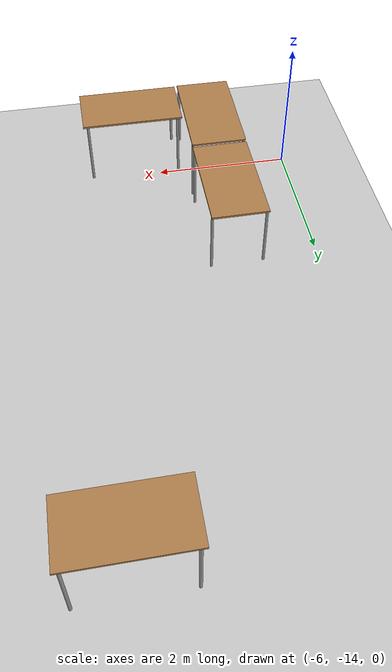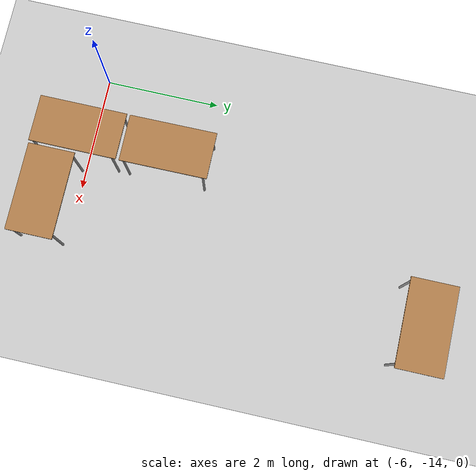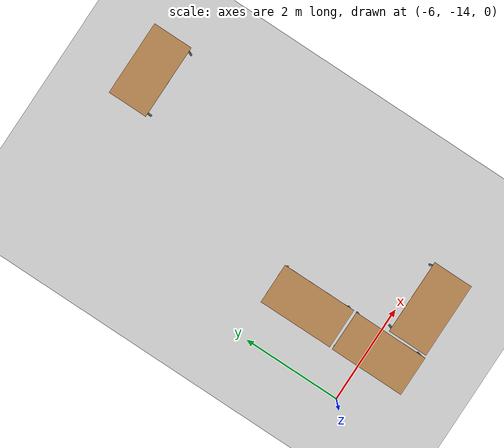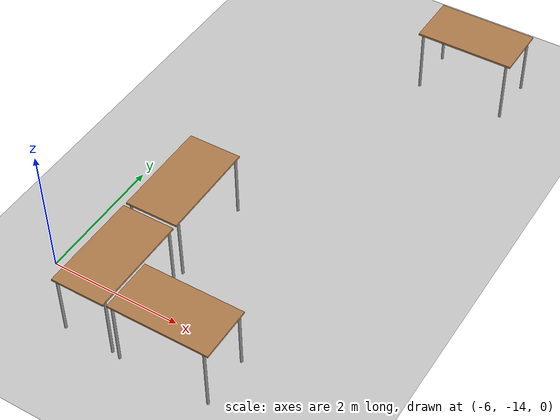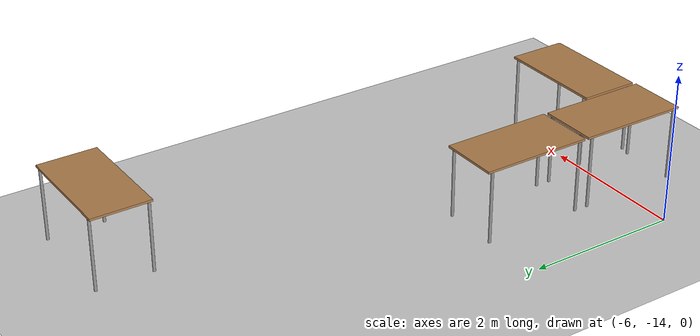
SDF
<sdf version="1.6">
 <world name="default">
  <model name="ground_plane">
   <static>1</static>
   <link name="link">
    <collision name="collision">
     <geometry><plane><normal>0 0 1</normal><size>100 100</size></plane></geometry>
     <surface>
      <contact><collide_bitmask>65535</collide_bitmask></contact>
      <friction><ode><mu>100</mu><mu2>50</mu2></ode></friction>
     </surface>
    </collision>
    <visual name="visual">
     <cast_shadows>0</cast_shadows>
     <geometry><plane><normal>0 0 1</normal><size>100 100</size></plane></geometry>
     <material>
      <script><uri>file://media/materials/scripts/gazebo.material</uri><name>Gazebo/Grey</name></script>
     </material>
    </visual>
   </link>
  </model>
  <model name="table_7">
   <static>1</static>
   <link name="link">
    <collision name="surface">
     <pose>0 0 1 0 -0 0</pose>
     <geometry><box><size>1.5 0.8 0.03</size></box></geometry>
     <surface><friction><ode><mu>0.6</mu><mu2>0.6</mu2></ode></friction></surface>
    </collision>
    <visual name="visual1">
     <pose>0 0 1 0 -0 0</pose>
     <geometry><box><size>1.5 0.8 0.03</size></box></geometry>
     <material>
      <script><uri>file://media/materials/scripts/gazebo.material</uri><name>Gazebo/Wood</name></script>
     </material>
    </visual>
    <collision name="front_left_leg">
     <pose>0.68 0.38 0.5 0 -0 0</pose>
     <geometry><cylinder><radius>0.02</radius><length>1</length></cylinder></geometry>
    </collision>
    <visual name="front_left_leg">
     <pose>0.68 0.38 0.5 0 -0 0</pose>
     <geometry><cylinder><radius>0.02</radius><length>1</length></cylinder></geometry>
     <material>
      <script><uri>file://media/materials/scripts/gazebo.material</uri><name>Gazebo/Grey</name></script>
     </material>
    </visual>
    <collision name="front_right_leg">
     <pose>0.68 -0.38 0.5 0 -0 0</pose>
     <geometry><cylinder><radius>0.02</radius><length>1</length></cylinder></geometry>
    </collision>
    <visual name="front_right_leg">
     <pose>0.68 -0.38 0.5 0 -0 0</pose>
     <geometry><cylinder><radius>0.02</radius><length>1</length></cylinder></geometry>
     <material>
      <script><uri>file://media/materials/scripts/gazebo.material</uri><name>Gazebo/Grey</name></script>
     </material>
    </visual>
    <collision name="back_right_leg">
     <pose>-0.68 -0.38 0.5 0 -0 0</pose>
     <geometry><cylinder><radius>0.02</radius><length>1</length></cylinder></geometry>
    </collision>
    <visual name="back_right_leg">
     <pose>-0.68 -0.38 0.5 0 -0 0</pose>
     <geometry><cylinder><radius>0.02</radius><length>1</length></cylinder></geometry>
     <material>
      <script><uri>file://media/materials/scripts/gazebo.material</uri><name>Gazebo/Grey</name></script>
     </material>
    </visual>
    <collision name="back_left_leg">
     <pose>-0.68 0.38 0.5 0 -0 0</pose>
     <geometry><cylinder><radius>0.02</radius><length>1</length></cylinder></geometry>
    </collision>
    <visual name="back_left_leg">
     <pose>-0.68 0.38 0.5 0 -0 0</pose>
     <geometry><cylinder><radius>0.02</radius><length>1</length></cylinder></geometry>
     <material>
      <script><uri>file://media/materials/scripts/gazebo.material</uri><name>Gazebo/Grey</name></script>
     </material>
    </visual>
   </link>
   <pose>-2.81475 -7.80658 0 0 -0 0</pose>
  </model>
  <model name="table_8">
   <static>1</static>
   <link name="link">
    <collision name="surface">
     <pose>0 0 1 0 -0 0</pose>
     <geometry><box><size>1.5 0.8 0.03</size></box></geometry>
     <surface><friction><ode><mu>0.6</mu><mu2>0.6</mu2></ode></friction></surface>
    </collision>
    <visual name="visual1">
     <pose>0 0 1 0 -0 0</pose>
     <geometry><box><size>1.5 0.8 0.03</size></box></geometry>
     <material>
      <script><uri>file://media/materials/scripts/gazebo.material</uri><name>Gazebo/Wood</name></script>
     </material>
    </visual>
    <collision name="front_left_leg">
     <pose>0.68 0.38 0.5 0 -0 0</pose>
     <geometry><cylinder><radius>0.02</radius><length>1</length></cylinder></geometry>
    </collision>
    <visual name="front_left_leg">
     <pose>0.68 0.38 0.5 0 -0 0</pose>
     <geometry><cylinder><radius>0.02</radius><length>1</length></cylinder></geometry>
     <material>
      <script><uri>file://media/materials/scripts/gazebo.material</uri><name>Gazebo/Grey</name></script>
     </material>
    </visual>
    <collision name="front_right_leg">
     <pose>0.68 -0.38 0.5 0 -0 0</pose>
     <geometry><cylinder><radius>0.02</radius><length>1</length></cylinder></geometry>
    </collision>
    <visual name="front_right_leg">
     <pose>0.68 -0.38 0.5 0 -0 0</pose>
     <geometry><cylinder><radius>0.02</radius><length>1</length></cylinder></geometry>
     <material>
      <script><uri>file://media/materials/scripts/gazebo.material</uri><name>Gazebo/Grey</name></script>
     </material>
    </visual>
    <collision name="back_right_leg">
     <pose>-0.68 -0.38 0.5 0 -0 0</pose>
     <geometry><cylinder><radius>0.02</radius><length>1</length></cylinder></geometry>
    </collision>
    <visual name="back_right_leg">
     <pose>-0.68 -0.38 0.5 0 -0 0</pose>
     <geometry><cylinder><radius>0.02</radius><length>1</length></cylinder></geometry>
     <material>
      <script><uri>file://media/materials/scripts/gazebo.material</uri><name>Gazebo/Grey</name></script>
     </material>
    </visual>
    <collision name="back_left_leg">
     <pose>-0.68 0.38 0.5 0 -0 0</pose>
     <geometry><cylinder><radius>0.02</radius><length>1</length></cylinder></geometry>
    </collision>
    <visual name="back_left_leg">
     <pose>-0.68 0.38 0.5 0 -0 0</pose>
     <geometry><cylinder><radius>0.02</radius><length>1</length></cylinder></geometry>
     <material>
      <script><uri>file://media/materials/scripts/gazebo.material</uri><name>Gazebo/Grey</name></script>
     </material>
    </visual>
   </link>
   <pose>-3.62062 -14.4481 0 0 -0 0</pose>
  </model>
  <model name="table_9">
   <static>1</static>
   <link name="link">
    <collision name="surface">
     <pose>0 0 1 0 -0 0</pose>
     <geometry><box><size>1.5 0.8 0.03</size></box></geometry>
     <surface><friction><ode><mu>0.6</mu><mu2>0.6</mu2></ode></friction></surface>
    </collision>
    <visual name="visual1">
     <pose>0 0 1 0 -0 0</pose>
     <geometry><box><size>1.5 0.8 0.03</size></box></geometry>
     <material>
      <script><uri>file://media/materials/scripts/gazebo.material</uri><name>Gazebo/Wood</name></script>
     </material>
    </visual>
    <collision name="front_left_leg">
     <pose>0.68 0.38 0.5 0 -0 0</pose>
     <geometry><cylinder><radius>0.02</radius><length>1</length></cylinder></geometry>
    </collision>
    <visual name="front_left_leg">
     <pose>0.68 0.38 0.5 0 -0 0</pose>
     <geometry><cylinder><radius>0.02</radius><length>1</length></cylinder></geometry>
     <material>
      <script><uri>file://media/materials/scripts/gazebo.material</uri><name>Gazebo/Grey</name></script>
     </material>
    </visual>
    <collision name="front_right_leg">
     <pose>0.68 -0.38 0.5 0 -0 0</pose>
     <geometry><cylinder><radius>0.02</radius><length>1</length></cylinder></geometry>
    </collision>
    <visual name="front_right_leg">
     <pose>0.68 -0.38 0.5 0 -0 0</pose>
     <geometry><cylinder><radius>0.02</radius><length>1</length></cylinder></geometry>
     <material>
      <script><uri>file://media/materials/scripts/gazebo.material</uri><name>Gazebo/Grey</name></script>
     </material>
    </visual>
    <collision name="back_right_leg">
     <pose>-0.68 -0.38 0.5 0 -0 0</pose>
     <geometry><cylinder><radius>0.02</radius><length>1</length></cylinder></geometry>
    </collision>
    <visual name="back_right_leg">
     <pose>-0.68 -0.38 0.5 0 -0 0</pose>
     <geometry><cylinder><radius>0.02</radius><length>1</length></cylinder></geometry>
     <material>
      <script><uri>file://media/materials/scripts/gazebo.material</uri><name>Gazebo/Grey</name></script>
     </material>
    </visual>
    <collision name="back_left_leg">
     <pose>-0.68 0.38 0.5 0 -0 0</pose>
     <geometry><cylinder><radius>0.02</radius><length>1</length></cylinder></geometry>
    </collision>
    <visual name="back_left_leg">
     <pose>-0.68 0.38 0.5 0 -0 0</pose>
     <geometry><cylinder><radius>0.02</radius><length>1</length></cylinder></geometry>
     <material>
      <script><uri>file://media/materials/scripts/gazebo.material</uri><name>Gazebo/Grey</name></script>
     </material>
    </visual>
   </link>
   <pose>-4.81634 -14.1127 0 0 -0 1.56887</pose>
  </model>
  <model name="table_10">
   <static>1</static>
   <link name="link">
    <collision name="surface">
     <pose>0 0 1 0 -0 0</pose>
     <geometry><box><size>1.5 0.8 0.03</size></box></geometry>
     <surface><friction><ode><mu>0.6</mu><mu2>0.6</mu2></ode></friction></surface>
    </collision>
    <visual name="visual1">
     <pose>0 0 1 0 -0 0</pose>
     <geometry><box><size>1.5 0.8 0.03</size></box></geometry>
     <material>
      <script><uri>file://media/materials/scripts/gazebo.material</uri><name>Gazebo/Wood</name></script>
     </material>
    </visual>
    <collision name="front_left_leg">
     <pose>0.68 0.38 0.5 0 -0 0</pose>
     <geometry><cylinder><radius>0.02</radius><length>1</length></cylinder></geometry>
    </collision>
    <visual name="front_left_leg">
     <pose>0.68 0.38 0.5 0 -0 0</pose>
     <geometry><cylinder><radius>0.02</radius><length>1</length></cylinder></geometry>
     <material>
      <script><uri>file://media/materials/scripts/gazebo.material</uri><name>Gazebo/Grey</name></script>
     </material>
    </visual>
    <collision name="front_right_leg">
     <pose>0.68 -0.38 0.5 0 -0 0</pose>
     <geometry><cylinder><radius>0.02</radius><length>1</length></cylinder></geometry>
    </collision>
    <visual name="front_right_leg">
     <pose>0.68 -0.38 0.5 0 -0 0</pose>
     <geometry><cylinder><radius>0.02</radius><length>1</length></cylinder></geometry>
     <material>
      <script><uri>file://media/materials/scripts/gazebo.material</uri><name>Gazebo/Grey</name></script>
     </material>
    </visual>
    <collision name="back_right_leg">
     <pose>-0.68 -0.38 0.5 0 -0 0</pose>
     <geometry><cylinder><radius>0.02</radius><length>1</length></cylinder></geometry>
    </collision>
    <visual name="back_right_leg">
     <pose>-0.68 -0.38 0.5 0 -0 0</pose>
     <geometry><cylinder><radius>0.02</radius><length>1</length></cylinder></geometry>
     <material>
      <script><uri>file://media/materials/scripts/gazebo.material</uri><name>Gazebo/Grey</name></script>
     </material>
    </visual>
    <collision name="back_left_leg">
     <pose>-0.68 0.38 0.5 0 -0 0</pose>
     <geometry><cylinder><radius>0.02</radius><length>1</length></cylinder></geometry>
    </collision>
    <visual name="back_left_leg">
     <pose>-0.68 0.38 0.5 0 -0 0</pose>
     <geometry><cylinder><radius>0.02</radius><length>1</length></cylinder></geometry>
     <material>
      <script><uri>file://media/materials/scripts/gazebo.material</uri><name>Gazebo/Grey</name></script>
     </material>
    </visual>
   </link>
   <pose>-4.81249 -12.5568 0 0 -0 1.57462</pose>
  </model>
 </world>
</sdf>
